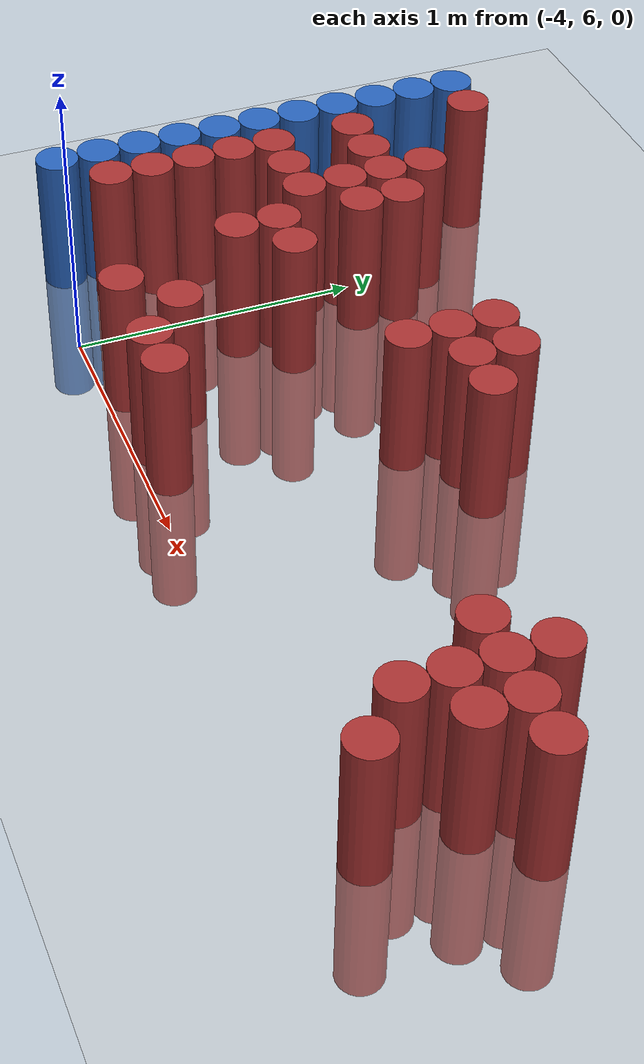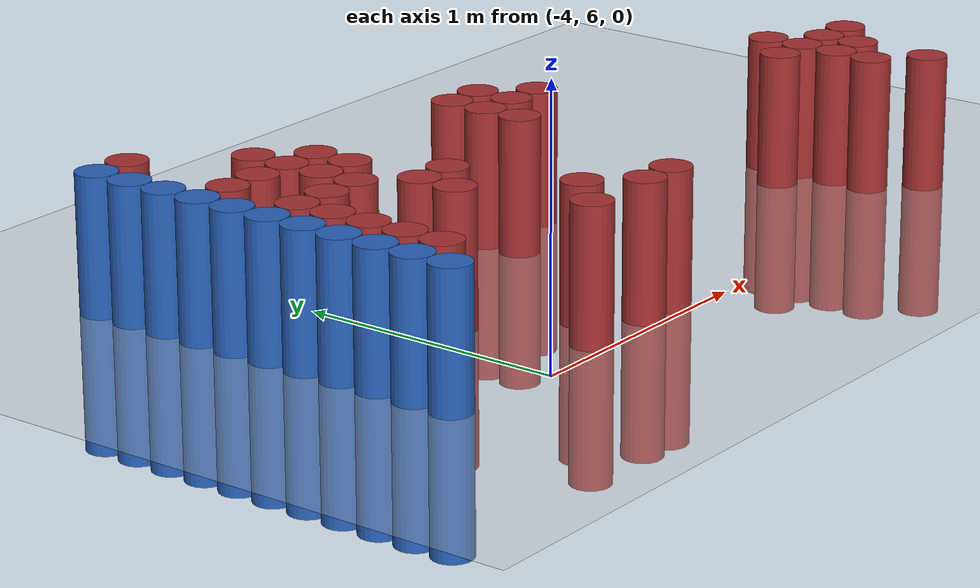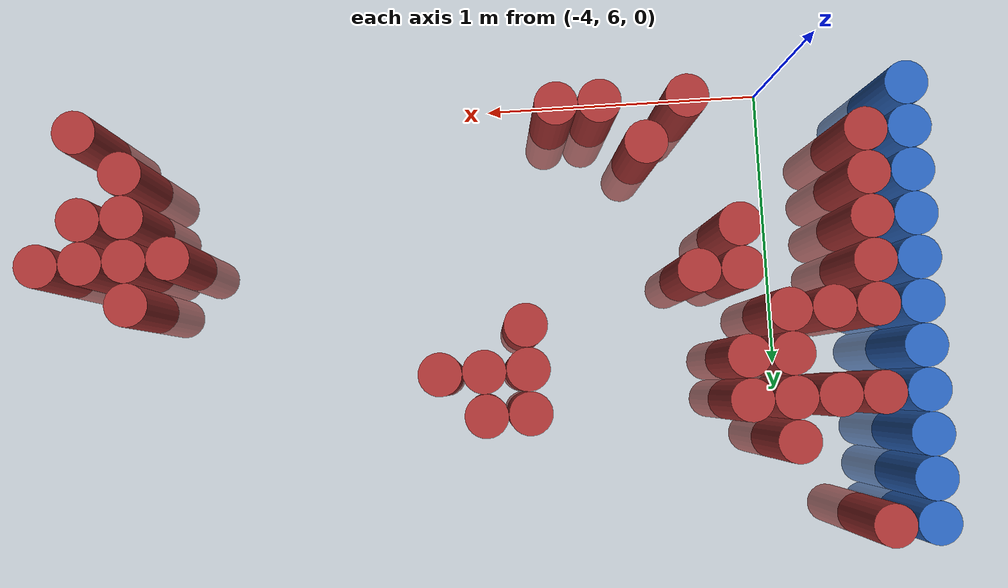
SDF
<sdf version="1.6">
 <world name="default">
  <model name="ground_plane">
   <static>1</static>
   <link name="link">
    <collision name="collision">
     <geometry><plane><normal>0 0 1</normal><size>100 100</size></plane></geometry>
     <surface><friction><ode><mu>100</mu><mu2>50</mu2></ode></friction></surface>
    </collision>
    <visual name="visual">
     <cast_shadows>0</cast_shadows>
     <geometry><plane><normal>0 0 1</normal><size>100 100</size></plane></geometry>
     <material>
      <script><uri>file://media/materials/scripts/gazebo.material</uri><name>Gazebo/Grey</name></script>
     </material>
    </visual>
   </link>
  </model>
  <model name="unit_cylinder_102">
   <static>1</static>
   <pose>-4.425000 6.075000 0.000000 0.000000 0.000000 0.000000</pose>
   <link name="link">
    <inertial>
     <mass>1</mass>
     <inertia><ixx>0.145833</ixx><ixy>0</ixy><ixz>0</ixz><iyy>0.145833</iyy><iyz>0</iyz><izz>0.125</izz></inertia>
    </inertial>
    <collision name="collision">
     <geometry><cylinder><radius>0.075000</radius><length>1</length></cylinder></geometry>
    </collision>
    <visual name="visual">
     <geometry><cylinder><radius>0.075000</radius><length>1</length></cylinder></geometry>
     <material>
      <ambient>0.152000 0.379000 0.720000 1</ambient>
      <diffuse>0.152000 0.379000 0.720000 1</diffuse>
     </material>
     <material>
      <script><name>Gazebo/Grey</name><uri>file://media/materials/scripts/gazebo.material</uri></script>
     </material>
    </visual>
   </link>
  </model>
  <model name="unit_cylinder_103">
   <static>1</static>
   <pose>-4.425000 6.225000 0.000000 0.000000 0.000000 0.000000</pose>
   <link name="link">
    <inertial>
     <mass>1</mass>
     <inertia><ixx>0.145833</ixx><ixy>0</ixy><ixz>0</ixz><iyy>0.145833</iyy><iyz>0</iyz><izz>0.125</izz></inertia>
    </inertial>
    <collision name="collision">
     <geometry><cylinder><radius>0.075000</radius><length>1</length></cylinder></geometry>
    </collision>
    <visual name="visual">
     <geometry><cylinder><radius>0.075000</radius><length>1</length></cylinder></geometry>
     <material>
      <ambient>0.152000 0.379000 0.720000 1</ambient>
      <diffuse>0.152000 0.379000 0.720000 1</diffuse>
     </material>
     <material>
      <script><name>Gazebo/Grey</name><uri>file://media/materials/scripts/gazebo.material</uri></script>
     </material>
    </visual>
   </link>
  </model>
  <model name="unit_cylinder_104">
   <static>1</static>
   <pose>-4.425000 6.375000 0.000000 0.000000 0.000000 0.000000</pose>
   <link name="link">
    <inertial>
     <mass>1</mass>
     <inertia><ixx>0.145833</ixx><ixy>0</ixy><ixz>0</ixz><iyy>0.145833</iyy><iyz>0</iyz><izz>0.125</izz></inertia>
    </inertial>
    <collision name="collision">
     <geometry><cylinder><radius>0.075000</radius><length>1</length></cylinder></geometry>
    </collision>
    <visual name="visual">
     <geometry><cylinder><radius>0.075000</radius><length>1</length></cylinder></geometry>
     <material>
      <ambient>0.152000 0.379000 0.720000 1</ambient>
      <diffuse>0.152000 0.379000 0.720000 1</diffuse>
     </material>
     <material>
      <script><name>Gazebo/Grey</name><uri>file://media/materials/scripts/gazebo.material</uri></script>
     </material>
    </visual>
   </link>
  </model>
  <model name="unit_cylinder_105">
   <static>1</static>
   <pose>-4.425000 6.525000 0.000000 0.000000 0.000000 0.000000</pose>
   <link name="link">
    <inertial>
     <mass>1</mass>
     <inertia><ixx>0.145833</ixx><ixy>0</ixy><ixz>0</ixz><iyy>0.145833</iyy><iyz>0</iyz><izz>0.125</izz></inertia>
    </inertial>
    <collision name="collision">
     <geometry><cylinder><radius>0.075000</radius><length>1</length></cylinder></geometry>
    </collision>
    <visual name="visual">
     <geometry><cylinder><radius>0.075000</radius><length>1</length></cylinder></geometry>
     <material>
      <ambient>0.152000 0.379000 0.720000 1</ambient>
      <diffuse>0.152000 0.379000 0.720000 1</diffuse>
     </material>
     <material>
      <script><name>Gazebo/Grey</name><uri>file://media/materials/scripts/gazebo.material</uri></script>
     </material>
    </visual>
   </link>
  </model>
  <model name="unit_cylinder_106">
   <static>1</static>
   <pose>-4.425000 6.675000 0.000000 0.000000 0.000000 0.000000</pose>
   <link name="link">
    <inertial>
     <mass>1</mass>
     <inertia><ixx>0.145833</ixx><ixy>0</ixy><ixz>0</ixz><iyy>0.145833</iyy><iyz>0</iyz><izz>0.125</izz></inertia>
    </inertial>
    <collision name="collision">
     <geometry><cylinder><radius>0.075000</radius><length>1</length></cylinder></geometry>
    </collision>
    <visual name="visual">
     <geometry><cylinder><radius>0.075000</radius><length>1</length></cylinder></geometry>
     <material>
      <ambient>0.152000 0.379000 0.720000 1</ambient>
      <diffuse>0.152000 0.379000 0.720000 1</diffuse>
     </material>
     <material>
      <script><name>Gazebo/Grey</name><uri>file://media/materials/scripts/gazebo.material</uri></script>
     </material>
    </visual>
   </link>
  </model>
  <model name="unit_cylinder_107">
   <static>1</static>
   <pose>-4.425000 6.825000 0.000000 0.000000 0.000000 0.000000</pose>
   <link name="link">
    <inertial>
     <mass>1</mass>
     <inertia><ixx>0.145833</ixx><ixy>0</ixy><ixz>0</ixz><iyy>0.145833</iyy><iyz>0</iyz><izz>0.125</izz></inertia>
    </inertial>
    <collision name="collision">
     <geometry><cylinder><radius>0.075000</radius><length>1</length></cylinder></geometry>
    </collision>
    <visual name="visual">
     <geometry><cylinder><radius>0.075000</radius><length>1</length></cylinder></geometry>
     <material>
      <ambient>0.152000 0.379000 0.720000 1</ambient>
      <diffuse>0.152000 0.379000 0.720000 1</diffuse>
     </material>
     <material>
      <script><name>Gazebo/Grey</name><uri>file://media/materials/scripts/gazebo.material</uri></script>
     </material>
    </visual>
   </link>
  </model>
  <model name="unit_cylinder_108">
   <static>1</static>
   <pose>-4.425000 6.975000 0.000000 0.000000 0.000000 0.000000</pose>
   <link name="link">
    <inertial>
     <mass>1</mass>
     <inertia><ixx>0.145833</ixx><ixy>0</ixy><ixz>0</ixz><iyy>0.145833</iyy><iyz>0</iyz><izz>0.125</izz></inertia>
    </inertial>
    <collision name="collision">
     <geometry><cylinder><radius>0.075000</radius><length>1</length></cylinder></geometry>
    </collision>
    <visual name="visual">
     <geometry><cylinder><radius>0.075000</radius><length>1</length></cylinder></geometry>
     <material>
      <ambient>0.152000 0.379000 0.720000 1</ambient>
      <diffuse>0.152000 0.379000 0.720000 1</diffuse>
     </material>
     <material>
      <script><name>Gazebo/Grey</name><uri>file://media/materials/scripts/gazebo.material</uri></script>
     </material>
    </visual>
   </link>
  </model>
  <model name="unit_cylinder_109">
   <static>1</static>
   <pose>-4.425000 7.125000 0.000000 0.000000 0.000000 0.000000</pose>
   <link name="link">
    <inertial>
     <mass>1</mass>
     <inertia><ixx>0.145833</ixx><ixy>0</ixy><ixz>0</ixz><iyy>0.145833</iyy><iyz>0</iyz><izz>0.125</izz></inertia>
    </inertial>
    <collision name="collision">
     <geometry><cylinder><radius>0.075000</radius><length>1</length></cylinder></geometry>
    </collision>
    <visual name="visual">
     <geometry><cylinder><radius>0.075000</radius><length>1</length></cylinder></geometry>
     <material>
      <ambient>0.152000 0.379000 0.720000 1</ambient>
      <diffuse>0.152000 0.379000 0.720000 1</diffuse>
     </material>
     <material>
      <script><name>Gazebo/Grey</name><uri>file://media/materials/scripts/gazebo.material</uri></script>
     </material>
    </visual>
   </link>
  </model>
  <model name="unit_cylinder_110">
   <static>1</static>
   <pose>-4.425000 7.275000 0.000000 0.000000 0.000000 0.000000</pose>
   <link name="link">
    <inertial>
     <mass>1</mass>
     <inertia><ixx>0.145833</ixx><ixy>0</ixy><ixz>0</ixz><iyy>0.145833</iyy><iyz>0</iyz><izz>0.125</izz></inertia>
    </inertial>
    <collision name="collision">
     <geometry><cylinder><radius>0.075000</radius><length>1</length></cylinder></geometry>
    </collision>
    <visual name="visual">
     <geometry><cylinder><radius>0.075000</radius><length>1</length></cylinder></geometry>
     <material>
      <ambient>0.152000 0.379000 0.720000 1</ambient>
      <diffuse>0.152000 0.379000 0.720000 1</diffuse>
     </material>
     <material>
      <script><name>Gazebo/Grey</name><uri>file://media/materials/scripts/gazebo.material</uri></script>
     </material>
    </visual>
   </link>
  </model>
  <model name="unit_cylinder_111">
   <static>1</static>
   <pose>-4.425000 7.425000 0.000000 0.000000 0.000000 0.000000</pose>
   <link name="link">
    <inertial>
     <mass>1</mass>
     <inertia><ixx>0.145833</ixx><ixy>0</ixy><ixz>0</ixz><iyy>0.145833</iyy><iyz>0</iyz><izz>0.125</izz></inertia>
    </inertial>
    <collision name="collision">
     <geometry><cylinder><radius>0.075000</radius><length>1</length></cylinder></geometry>
    </collision>
    <visual name="visual">
     <geometry><cylinder><radius>0.075000</radius><length>1</length></cylinder></geometry>
     <material>
      <ambient>0.152000 0.379000 0.720000 1</ambient>
      <diffuse>0.152000 0.379000 0.720000 1</diffuse>
     </material>
     <material>
      <script><name>Gazebo/Grey</name><uri>file://media/materials/scripts/gazebo.material</uri></script>
     </material>
    </visual>
   </link>
  </model>
  <model name="unit_cylinder_112">
   <static>1</static>
   <pose>-4.425000 7.575000 0.000000 0.000000 0.000000 0.000000</pose>
   <link name="link">
    <inertial>
     <mass>1</mass>
     <inertia><ixx>0.145833</ixx><ixy>0</ixy><ixz>0</ixz><iyy>0.145833</iyy><iyz>0</iyz><izz>0.125</izz></inertia>
    </inertial>
    <collision name="collision">
     <geometry><cylinder><radius>0.075000</radius><length>1</length></cylinder></geometry>
    </collision>
    <visual name="visual">
     <geometry><cylinder><radius>0.075000</radius><length>1</length></cylinder></geometry>
     <material>
      <ambient>0.152000 0.379000 0.720000 1</ambient>
      <diffuse>0.152000 0.379000 0.720000 1</diffuse>
     </material>
     <material>
      <script><name>Gazebo/Grey</name><uri>file://media/materials/scripts/gazebo.material</uri></script>
     </material>
    </visual>
   </link>
  </model>
  <model name="unit_cylinder_128">
   <static>1</static>
   <pose>-4.275000 6.225000 0.000000 0.000000 0.000000 0.000000</pose>
   <link name="link">
    <inertial>
     <mass>1</mass>
     <inertia><ixx>0.145833</ixx><ixy>0</ixy><ixz>0</ixz><iyy>0.145833</iyy><iyz>0</iyz><izz>0.125</izz></inertia>
    </inertial>
    <collision name="collision">
     <geometry><cylinder><radius>0.075000</radius><length>1</length></cylinder></geometry>
    </collision>
    <visual name="visual">
     <geometry><cylinder><radius>0.075000</radius><length>1</length></cylinder></geometry>
     <material>
      <ambient>0.648000 0.192000 0.192000 1</ambient>
      <diffuse>0.648000 0.192000 0.192000 1</diffuse>
     </material>
     <material>
      <script><name>Gazebo/Grey</name><uri>file://media/materials/scripts/gazebo.material</uri></script>
     </material>
    </visual>
   </link>
  </model>
  <model name="unit_cylinder_129">
   <static>1</static>
   <pose>-4.275000 6.375000 0.000000 0.000000 0.000000 0.000000</pose>
   <link name="link">
    <inertial>
     <mass>1</mass>
     <inertia><ixx>0.145833</ixx><ixy>0</ixy><ixz>0</ixz><iyy>0.145833</iyy><iyz>0</iyz><izz>0.125</izz></inertia>
    </inertial>
    <collision name="collision">
     <geometry><cylinder><radius>0.075000</radius><length>1</length></cylinder></geometry>
    </collision>
    <visual name="visual">
     <geometry><cylinder><radius>0.075000</radius><length>1</length></cylinder></geometry>
     <material>
      <ambient>0.648000 0.192000 0.192000 1</ambient>
      <diffuse>0.648000 0.192000 0.192000 1</diffuse>
     </material>
     <material>
      <script><name>Gazebo/Grey</name><uri>file://media/materials/scripts/gazebo.material</uri></script>
     </material>
    </visual>
   </link>
  </model>
  <model name="unit_cylinder_130">
   <static>1</static>
   <pose>-4.275000 6.525000 0.000000 0.000000 0.000000 0.000000</pose>
   <link name="link">
    <inertial>
     <mass>1</mass>
     <inertia><ixx>0.145833</ixx><ixy>0</ixy><ixz>0</ixz><iyy>0.145833</iyy><iyz>0</iyz><izz>0.125</izz></inertia>
    </inertial>
    <collision name="collision">
     <geometry><cylinder><radius>0.075000</radius><length>1</length></cylinder></geometry>
    </collision>
    <visual name="visual">
     <geometry><cylinder><radius>0.075000</radius><length>1</length></cylinder></geometry>
     <material>
      <ambient>0.648000 0.192000 0.192000 1</ambient>
      <diffuse>0.648000 0.192000 0.192000 1</diffuse>
     </material>
     <material>
      <script><name>Gazebo/Grey</name><uri>file://media/materials/scripts/gazebo.material</uri></script>
     </material>
    </visual>
   </link>
  </model>
  <model name="unit_cylinder_131">
   <static>1</static>
   <pose>-4.275000 6.675000 0.000000 0.000000 0.000000 0.000000</pose>
   <link name="link">
    <inertial>
     <mass>1</mass>
     <inertia><ixx>0.145833</ixx><ixy>0</ixy><ixz>0</ixz><iyy>0.145833</iyy><iyz>0</iyz><izz>0.125</izz></inertia>
    </inertial>
    <collision name="collision">
     <geometry><cylinder><radius>0.075000</radius><length>1</length></cylinder></geometry>
    </collision>
    <visual name="visual">
     <geometry><cylinder><radius>0.075000</radius><length>1</length></cylinder></geometry>
     <material>
      <ambient>0.648000 0.192000 0.192000 1</ambient>
      <diffuse>0.648000 0.192000 0.192000 1</diffuse>
     </material>
     <material>
      <script><name>Gazebo/Grey</name><uri>file://media/materials/scripts/gazebo.material</uri></script>
     </material>
    </visual>
   </link>
  </model>
  <model name="unit_cylinder_132">
   <static>1</static>
   <pose>-4.275000 6.825000 0.000000 0.000000 0.000000 0.000000</pose>
   <link name="link">
    <inertial>
     <mass>1</mass>
     <inertia><ixx>0.145833</ixx><ixy>0</ixy><ixz>0</ixz><iyy>0.145833</iyy><iyz>0</iyz><izz>0.125</izz></inertia>
    </inertial>
    <collision name="collision">
     <geometry><cylinder><radius>0.075000</radius><length>1</length></cylinder></geometry>
    </collision>
    <visual name="visual">
     <geometry><cylinder><radius>0.075000</radius><length>1</length></cylinder></geometry>
     <material>
      <ambient>0.648000 0.192000 0.192000 1</ambient>
      <diffuse>0.648000 0.192000 0.192000 1</diffuse>
     </material>
     <material>
      <script><name>Gazebo/Grey</name><uri>file://media/materials/scripts/gazebo.material</uri></script>
     </material>
    </visual>
   </link>
  </model>
  <model name="unit_cylinder_133">
   <static>1</static>
   <pose>-4.275000 7.125000 0.000000 0.000000 0.000000 0.000000</pose>
   <link name="link">
    <inertial>
     <mass>1</mass>
     <inertia><ixx>0.145833</ixx><ixy>0</ixy><ixz>0</ixz><iyy>0.145833</iyy><iyz>0</iyz><izz>0.125</izz></inertia>
    </inertial>
    <collision name="collision">
     <geometry><cylinder><radius>0.075000</radius><length>1</length></cylinder></geometry>
    </collision>
    <visual name="visual">
     <geometry><cylinder><radius>0.075000</radius><length>1</length></cylinder></geometry>
     <material>
      <ambient>0.648000 0.192000 0.192000 1</ambient>
      <diffuse>0.648000 0.192000 0.192000 1</diffuse>
     </material>
     <material>
      <script><name>Gazebo/Grey</name><uri>file://media/materials/scripts/gazebo.material</uri></script>
     </material>
    </visual>
   </link>
  </model>
  <model name="unit_cylinder_134">
   <static>1</static>
   <pose>-4.275000 7.575000 0.000000 0.000000 0.000000 0.000000</pose>
   <link name="link">
    <inertial>
     <mass>1</mass>
     <inertia><ixx>0.145833</ixx><ixy>0</ixy><ixz>0</ixz><iyy>0.145833</iyy><iyz>0</iyz><izz>0.125</izz></inertia>
    </inertial>
    <collision name="collision">
     <geometry><cylinder><radius>0.075000</radius><length>1</length></cylinder></geometry>
    </collision>
    <visual name="visual">
     <geometry><cylinder><radius>0.075000</radius><length>1</length></cylinder></geometry>
     <material>
      <ambient>0.648000 0.192000 0.192000 1</ambient>
      <diffuse>0.648000 0.192000 0.192000 1</diffuse>
     </material>
     <material>
      <script><name>Gazebo/Grey</name><uri>file://media/materials/scripts/gazebo.material</uri></script>
     </material>
    </visual>
   </link>
  </model>
  <model name="unit_cylinder_144">
   <static>1</static>
   <pose>-4.125000 6.825000 0.000000 0.000000 0.000000 0.000000</pose>
   <link name="link">
    <inertial>
     <mass>1</mass>
     <inertia><ixx>0.145833</ixx><ixy>0</ixy><ixz>0</ixz><iyy>0.145833</iyy><iyz>0</iyz><izz>0.125</izz></inertia>
    </inertial>
    <collision name="collision">
     <geometry><cylinder><radius>0.075000</radius><length>1</length></cylinder></geometry>
    </collision>
    <visual name="visual">
     <geometry><cylinder><radius>0.075000</radius><length>1</length></cylinder></geometry>
     <material>
      <ambient>0.648000 0.192000 0.192000 1</ambient>
      <diffuse>0.648000 0.192000 0.192000 1</diffuse>
     </material>
     <material>
      <script><name>Gazebo/Grey</name><uri>file://media/materials/scripts/gazebo.material</uri></script>
     </material>
    </visual>
   </link>
  </model>
  <model name="unit_cylinder_145">
   <static>1</static>
   <pose>-4.125000 7.125000 0.000000 0.000000 0.000000 0.000000</pose>
   <link name="link">
    <inertial>
     <mass>1</mass>
     <inertia><ixx>0.145833</ixx><ixy>0</ixy><ixz>0</ixz><iyy>0.145833</iyy><iyz>0</iyz><izz>0.125</izz></inertia>
    </inertial>
    <collision name="collision">
     <geometry><cylinder><radius>0.075000</radius><length>1</length></cylinder></geometry>
    </collision>
    <visual name="visual">
     <geometry><cylinder><radius>0.075000</radius><length>1</length></cylinder></geometry>
     <material>
      <ambient>0.648000 0.192000 0.192000 1</ambient>
      <diffuse>0.648000 0.192000 0.192000 1</diffuse>
     </material>
     <material>
      <script><name>Gazebo/Grey</name><uri>file://media/materials/scripts/gazebo.material</uri></script>
     </material>
    </visual>
   </link>
  </model>
  <model name="unit_cylinder_148">
   <static>1</static>
   <pose>-3.975000 6.825000 0.000000 0.000000 0.000000 0.000000</pose>
   <link name="link">
    <inertial>
     <mass>1</mass>
     <inertia><ixx>0.145833</ixx><ixy>0</ixy><ixz>0</ixz><iyy>0.145833</iyy><iyz>0</iyz><izz>0.125</izz></inertia>
    </inertial>
    <collision name="collision">
     <geometry><cylinder><radius>0.075000</radius><length>1</length></cylinder></geometry>
    </collision>
    <visual name="visual">
     <geometry><cylinder><radius>0.075000</radius><length>1</length></cylinder></geometry>
     <material>
      <ambient>0.648000 0.192000 0.192000 1</ambient>
      <diffuse>0.648000 0.192000 0.192000 1</diffuse>
     </material>
     <material>
      <script><name>Gazebo/Grey</name><uri>file://media/materials/scripts/gazebo.material</uri></script>
     </material>
    </visual>
   </link>
  </model>
  <model name="unit_cylinder_149">
   <static>1</static>
   <pose>-3.975000 6.975000 0.000000 0.000000 0.000000 0.000000</pose>
   <link name="link">
    <inertial>
     <mass>1</mass>
     <inertia><ixx>0.145833</ixx><ixy>0</ixy><ixz>0</ixz><iyy>0.145833</iyy><iyz>0</iyz><izz>0.125</izz></inertia>
    </inertial>
    <collision name="collision">
     <geometry><cylinder><radius>0.075000</radius><length>1</length></cylinder></geometry>
    </collision>
    <visual name="visual">
     <geometry><cylinder><radius>0.075000</radius><length>1</length></cylinder></geometry>
     <material>
      <ambient>0.648000 0.192000 0.192000 1</ambient>
      <diffuse>0.648000 0.192000 0.192000 1</diffuse>
     </material>
     <material>
      <script><name>Gazebo/Grey</name><uri>file://media/materials/scripts/gazebo.material</uri></script>
     </material>
    </visual>
   </link>
  </model>
  <model name="unit_cylinder_150">
   <static>1</static>
   <pose>-3.975000 7.125000 0.000000 0.000000 0.000000 0.000000</pose>
   <link name="link">
    <inertial>
     <mass>1</mass>
     <inertia><ixx>0.145833</ixx><ixy>0</ixy><ixz>0</ixz><iyy>0.145833</iyy><iyz>0</iyz><izz>0.125</izz></inertia>
    </inertial>
    <collision name="collision">
     <geometry><cylinder><radius>0.075000</radius><length>1</length></cylinder></geometry>
    </collision>
    <visual name="visual">
     <geometry><cylinder><radius>0.075000</radius><length>1</length></cylinder></geometry>
     <material>
      <ambient>0.648000 0.192000 0.192000 1</ambient>
      <diffuse>0.648000 0.192000 0.192000 1</diffuse>
     </material>
     <material>
      <script><name>Gazebo/Grey</name><uri>file://media/materials/scripts/gazebo.material</uri></script>
     </material>
    </visual>
   </link>
  </model>
  <model name="unit_cylinder_151">
   <static>1</static>
   <pose>-3.975000 7.275000 0.000000 0.000000 0.000000 0.000000</pose>
   <link name="link">
    <inertial>
     <mass>1</mass>
     <inertia><ixx>0.145833</ixx><ixy>0</ixy><ixz>0</ixz><iyy>0.145833</iyy><iyz>0</iyz><izz>0.125</izz></inertia>
    </inertial>
    <collision name="collision">
     <geometry><cylinder><radius>0.075000</radius><length>1</length></cylinder></geometry>
    </collision>
    <visual name="visual">
     <geometry><cylinder><radius>0.075000</radius><length>1</length></cylinder></geometry>
     <material>
      <ambient>0.648000 0.192000 0.192000 1</ambient>
      <diffuse>0.648000 0.192000 0.192000 1</diffuse>
     </material>
     <material>
      <script><name>Gazebo/Grey</name><uri>file://media/materials/scripts/gazebo.material</uri></script>
     </material>
    </visual>
   </link>
  </model>
  <model name="unit_cylinder_153">
   <static>1</static>
   <pose>-3.825000 6.525000 0.000000 0.000000 0.000000 0.000000</pose>
   <link name="link">
    <inertial>
     <mass>1</mass>
     <inertia><ixx>0.145833</ixx><ixy>0</ixy><ixz>0</ixz><iyy>0.145833</iyy><iyz>0</iyz><izz>0.125</izz></inertia>
    </inertial>
    <collision name="collision">
     <geometry><cylinder><radius>0.075000</radius><length>1</length></cylinder></geometry>
    </collision>
    <visual name="visual">
     <geometry><cylinder><radius>0.075000</radius><length>1</length></cylinder></geometry>
     <material>
      <ambient>0.648000 0.192000 0.192000 1</ambient>
      <diffuse>0.648000 0.192000 0.192000 1</diffuse>
     </material>
     <material>
      <script><name>Gazebo/Grey</name><uri>file://media/materials/scripts/gazebo.material</uri></script>
     </material>
    </visual>
   </link>
  </model>
  <model name="unit_cylinder_154">
   <static>1</static>
   <pose>-3.825000 6.675000 0.000000 0.000000 0.000000 0.000000</pose>
   <link name="link">
    <inertial>
     <mass>1</mass>
     <inertia><ixx>0.145833</ixx><ixy>0</ixy><ixz>0</ixz><iyy>0.145833</iyy><iyz>0</iyz><izz>0.125</izz></inertia>
    </inertial>
    <collision name="collision">
     <geometry><cylinder><radius>0.075000</radius><length>1</length></cylinder></geometry>
    </collision>
    <visual name="visual">
     <geometry><cylinder><radius>0.075000</radius><length>1</length></cylinder></geometry>
     <material>
      <ambient>0.648000 0.192000 0.192000 1</ambient>
      <diffuse>0.648000 0.192000 0.192000 1</diffuse>
     </material>
     <material>
      <script><name>Gazebo/Grey</name><uri>file://media/materials/scripts/gazebo.material</uri></script>
     </material>
    </visual>
   </link>
  </model>
  <model name="unit_cylinder_155">
   <static>1</static>
   <pose>-3.825000 6.975000 0.000000 0.000000 0.000000 0.000000</pose>
   <link name="link">
    <inertial>
     <mass>1</mass>
     <inertia><ixx>0.145833</ixx><ixy>0</ixy><ixz>0</ixz><iyy>0.145833</iyy><iyz>0</iyz><izz>0.125</izz></inertia>
    </inertial>
    <collision name="collision">
     <geometry><cylinder><radius>0.075000</radius><length>1</length></cylinder></geometry>
    </collision>
    <visual name="visual">
     <geometry><cylinder><radius>0.075000</radius><length>1</length></cylinder></geometry>
     <material>
      <ambient>0.648000 0.192000 0.192000 1</ambient>
      <diffuse>0.648000 0.192000 0.192000 1</diffuse>
     </material>
     <material>
      <script><name>Gazebo/Grey</name><uri>file://media/materials/scripts/gazebo.material</uri></script>
     </material>
    </visual>
   </link>
  </model>
  <model name="unit_cylinder_156">
   <static>1</static>
   <pose>-3.825000 7.125000 0.000000 0.000000 0.000000 0.000000</pose>
   <link name="link">
    <inertial>
     <mass>1</mass>
     <inertia><ixx>0.145833</ixx><ixy>0</ixy><ixz>0</ixz><iyy>0.145833</iyy><iyz>0</iyz><izz>0.125</izz></inertia>
    </inertial>
    <collision name="collision">
     <geometry><cylinder><radius>0.075000</radius><length>1</length></cylinder></geometry>
    </collision>
    <visual name="visual">
     <geometry><cylinder><radius>0.075000</radius><length>1</length></cylinder></geometry>
     <material>
      <ambient>0.648000 0.192000 0.192000 1</ambient>
      <diffuse>0.648000 0.192000 0.192000 1</diffuse>
     </material>
     <material>
      <script><name>Gazebo/Grey</name><uri>file://media/materials/scripts/gazebo.material</uri></script>
     </material>
    </visual>
   </link>
  </model>
  <model name="unit_cylinder_159">
   <static>1</static>
   <pose>-3.675000 6.075000 0.000000 0.000000 0.000000 0.000000</pose>
   <link name="link">
    <inertial>
     <mass>1</mass>
     <inertia><ixx>0.145833</ixx><ixy>0</ixy><ixz>0</ixz><iyy>0.145833</iyy><iyz>0</iyz><izz>0.125</izz></inertia>
    </inertial>
    <collision name="collision">
     <geometry><cylinder><radius>0.075000</radius><length>1</length></cylinder></geometry>
    </collision>
    <visual name="visual">
     <geometry><cylinder><radius>0.075000</radius><length>1</length></cylinder></geometry>
     <material>
      <ambient>0.648000 0.192000 0.192000 1</ambient>
      <diffuse>0.648000 0.192000 0.192000 1</diffuse>
     </material>
     <material>
      <script><name>Gazebo/Grey</name><uri>file://media/materials/scripts/gazebo.material</uri></script>
     </material>
    </visual>
   </link>
  </model>
  <model name="unit_cylinder_160">
   <static>1</static>
   <pose>-3.675000 6.675000 0.000000 0.000000 0.000000 0.000000</pose>
   <link name="link">
    <inertial>
     <mass>1</mass>
     <inertia><ixx>0.145833</ixx><ixy>0</ixy><ixz>0</ixz><iyy>0.145833</iyy><iyz>0</iyz><izz>0.125</izz></inertia>
    </inertial>
    <collision name="collision">
     <geometry><cylinder><radius>0.075000</radius><length>1</length></cylinder></geometry>
    </collision>
    <visual name="visual">
     <geometry><cylinder><radius>0.075000</radius><length>1</length></cylinder></geometry>
     <material>
      <ambient>0.648000 0.192000 0.192000 1</ambient>
      <diffuse>0.648000 0.192000 0.192000 1</diffuse>
     </material>
     <material>
      <script><name>Gazebo/Grey</name><uri>file://media/materials/scripts/gazebo.material</uri></script>
     </material>
    </visual>
   </link>
  </model>
  <model name="unit_cylinder_162">
   <static>1</static>
   <pose>-3.525000 6.225000 0.000000 0.000000 0.000000 0.000000</pose>
   <link name="link">
    <inertial>
     <mass>1</mass>
     <inertia><ixx>0.145833</ixx><ixy>0</ixy><ixz>0</ixz><iyy>0.145833</iyy><iyz>0</iyz><izz>0.125</izz></inertia>
    </inertial>
    <collision name="collision">
     <geometry><cylinder><radius>0.075000</radius><length>1</length></cylinder></geometry>
    </collision>
    <visual name="visual">
     <geometry><cylinder><radius>0.075000</radius><length>1</length></cylinder></geometry>
     <material>
      <ambient>0.648000 0.192000 0.192000 1</ambient>
      <diffuse>0.648000 0.192000 0.192000 1</diffuse>
     </material>
     <material>
      <script><name>Gazebo/Grey</name><uri>file://media/materials/scripts/gazebo.material</uri></script>
     </material>
    </visual>
   </link>
  </model>
  <model name="unit_cylinder_165">
   <static>1</static>
   <pose>-3.375000 6.075000 0.000000 0.000000 0.000000 0.000000</pose>
   <link name="link">
    <inertial>
     <mass>1</mass>
     <inertia><ixx>0.145833</ixx><ixy>0</ixy><ixz>0</ixz><iyy>0.145833</iyy><iyz>0</iyz><izz>0.125</izz></inertia>
    </inertial>
    <collision name="collision">
     <geometry><cylinder><radius>0.075000</radius><length>1</length></cylinder></geometry>
    </collision>
    <visual name="visual">
     <geometry><cylinder><radius>0.075000</radius><length>1</length></cylinder></geometry>
     <material>
      <ambient>0.648000 0.192000 0.192000 1</ambient>
      <diffuse>0.648000 0.192000 0.192000 1</diffuse>
     </material>
     <material>
      <script><name>Gazebo/Grey</name><uri>file://media/materials/scripts/gazebo.material</uri></script>
     </material>
    </visual>
   </link>
  </model>
  <model name="unit_cylinder_169">
   <static>1</static>
   <pose>-3.225000 6.075000 0.000000 0.000000 0.000000 0.000000</pose>
   <link name="link">
    <inertial>
     <mass>1</mass>
     <inertia><ixx>0.145833</ixx><ixy>0</ixy><ixz>0</ixz><iyy>0.145833</iyy><iyz>0</iyz><izz>0.125</izz></inertia>
    </inertial>
    <collision name="collision">
     <geometry><cylinder><radius>0.075000</radius><length>1</length></cylinder></geometry>
    </collision>
    <visual name="visual">
     <geometry><cylinder><radius>0.075000</radius><length>1</length></cylinder></geometry>
     <material>
      <ambient>0.648000 0.192000 0.192000 1</ambient>
      <diffuse>0.648000 0.192000 0.192000 1</diffuse>
     </material>
     <material>
      <script><name>Gazebo/Grey</name><uri>file://media/materials/scripts/gazebo.material</uri></script>
     </material>
    </visual>
   </link>
  </model>
  <model name="unit_cylinder_170">
   <static>1</static>
   <pose>-3.075000 6.825000 0.000000 0.000000 0.000000 0.000000</pose>
   <link name="link">
    <inertial>
     <mass>1</mass>
     <inertia><ixx>0.145833</ixx><ixy>0</ixy><ixz>0</ixz><iyy>0.145833</iyy><iyz>0</iyz><izz>0.125</izz></inertia>
    </inertial>
    <collision name="collision">
     <geometry><cylinder><radius>0.075000</radius><length>1</length></cylinder></geometry>
    </collision>
    <visual name="visual">
     <geometry><cylinder><radius>0.075000</radius><length>1</length></cylinder></geometry>
     <material>
      <ambient>0.648000 0.192000 0.192000 1</ambient>
      <diffuse>0.648000 0.192000 0.192000 1</diffuse>
     </material>
     <material>
      <script><name>Gazebo/Grey</name><uri>file://media/materials/scripts/gazebo.material</uri></script>
     </material>
    </visual>
   </link>
  </model>
  <model name="unit_cylinder_171">
   <static>1</static>
   <pose>-3.075000 6.975000 0.000000 0.000000 0.000000 0.000000</pose>
   <link name="link">
    <inertial>
     <mass>1</mass>
     <inertia><ixx>0.145833</ixx><ixy>0</ixy><ixz>0</ixz><iyy>0.145833</iyy><iyz>0</iyz><izz>0.125</izz></inertia>
    </inertial>
    <collision name="collision">
     <geometry><cylinder><radius>0.075000</radius><length>1</length></cylinder></geometry>
    </collision>
    <visual name="visual">
     <geometry><cylinder><radius>0.075000</radius><length>1</length></cylinder></geometry>
     <material>
      <ambient>0.648000 0.192000 0.192000 1</ambient>
      <diffuse>0.648000 0.192000 0.192000 1</diffuse>
     </material>
     <material>
      <script><name>Gazebo/Grey</name><uri>file://media/materials/scripts/gazebo.material</uri></script>
     </material>
    </visual>
   </link>
  </model>
  <model name="unit_cylinder_172">
   <static>1</static>
   <pose>-3.075000 7.125000 0.000000 0.000000 0.000000 0.000000</pose>
   <link name="link">
    <inertial>
     <mass>1</mass>
     <inertia><ixx>0.145833</ixx><ixy>0</ixy><ixz>0</ixz><iyy>0.145833</iyy><iyz>0</iyz><izz>0.125</izz></inertia>
    </inertial>
    <collision name="collision">
     <geometry><cylinder><radius>0.075000</radius><length>1</length></cylinder></geometry>
    </collision>
    <visual name="visual">
     <geometry><cylinder><radius>0.075000</radius><length>1</length></cylinder></geometry>
     <material>
      <ambient>0.648000 0.192000 0.192000 1</ambient>
      <diffuse>0.648000 0.192000 0.192000 1</diffuse>
     </material>
     <material>
      <script><name>Gazebo/Grey</name><uri>file://media/materials/scripts/gazebo.material</uri></script>
     </material>
    </visual>
   </link>
  </model>
  <model name="unit_cylinder_173">
   <static>1</static>
   <pose>-2.925000 6.975000 0.000000 0.000000 0.000000 0.000000</pose>
   <link name="link">
    <inertial>
     <mass>1</mass>
     <inertia><ixx>0.145833</ixx><ixy>0</ixy><ixz>0</ixz><iyy>0.145833</iyy><iyz>0</iyz><izz>0.125</izz></inertia>
    </inertial>
    <collision name="collision">
     <geometry><cylinder><radius>0.075000</radius><length>1</length></cylinder></geometry>
    </collision>
    <visual name="visual">
     <geometry><cylinder><radius>0.075000</radius><length>1</length></cylinder></geometry>
     <material>
      <ambient>0.648000 0.192000 0.192000 1</ambient>
      <diffuse>0.648000 0.192000 0.192000 1</diffuse>
     </material>
     <material>
      <script><name>Gazebo/Grey</name><uri>file://media/materials/scripts/gazebo.material</uri></script>
     </material>
    </visual>
   </link>
  </model>
  <model name="unit_cylinder_174">
   <static>1</static>
   <pose>-2.925000 7.125000 0.000000 0.000000 0.000000 0.000000</pose>
   <link name="link">
    <inertial>
     <mass>1</mass>
     <inertia><ixx>0.145833</ixx><ixy>0</ixy><ixz>0</ixz><iyy>0.145833</iyy><iyz>0</iyz><izz>0.125</izz></inertia>
    </inertial>
    <collision name="collision">
     <geometry><cylinder><radius>0.075000</radius><length>1</length></cylinder></geometry>
    </collision>
    <visual name="visual">
     <geometry><cylinder><radius>0.075000</radius><length>1</length></cylinder></geometry>
     <material>
      <ambient>0.648000 0.192000 0.192000 1</ambient>
      <diffuse>0.648000 0.192000 0.192000 1</diffuse>
     </material>
     <material>
      <script><name>Gazebo/Grey</name><uri>file://media/materials/scripts/gazebo.material</uri></script>
     </material>
    </visual>
   </link>
  </model>
  <model name="unit_cylinder_175">
   <static>1</static>
   <pose>-2.775000 6.975000 0.000000 0.000000 0.000000 0.000000</pose>
   <link name="link">
    <inertial>
     <mass>1</mass>
     <inertia><ixx>0.145833</ixx><ixy>0</ixy><ixz>0</ixz><iyy>0.145833</iyy><iyz>0</iyz><izz>0.125</izz></inertia>
    </inertial>
    <collision name="collision">
     <geometry><cylinder><radius>0.075000</radius><length>1</length></cylinder></geometry>
    </collision>
    <visual name="visual">
     <geometry><cylinder><radius>0.075000</radius><length>1</length></cylinder></geometry>
     <material>
      <ambient>0.648000 0.192000 0.192000 1</ambient>
      <diffuse>0.648000 0.192000 0.192000 1</diffuse>
     </material>
     <material>
      <script><name>Gazebo/Grey</name><uri>file://media/materials/scripts/gazebo.material</uri></script>
     </material>
    </visual>
   </link>
  </model>
  <model name="unit_cylinder_194">
   <static>1</static>
   <pose>-1.875000 6.525000 0.000000 0.000000 0.000000 0.000000</pose>
   <link name="link">
    <inertial>
     <mass>1</mass>
     <inertia><ixx>0.145833</ixx><ixy>0</ixy><ixz>0</ixz><iyy>0.145833</iyy><iyz>0</iyz><izz>0.125</izz></inertia>
    </inertial>
    <collision name="collision">
     <geometry><cylinder><radius>0.075000</radius><length>1</length></cylinder></geometry>
    </collision>
    <visual name="visual">
     <geometry><cylinder><radius>0.075000</radius><length>1</length></cylinder></geometry>
     <material>
      <ambient>0.648000 0.192000 0.192000 1</ambient>
      <diffuse>0.648000 0.192000 0.192000 1</diffuse>
     </material>
     <material>
      <script><name>Gazebo/Grey</name><uri>file://media/materials/scripts/gazebo.material</uri></script>
     </material>
    </visual>
   </link>
  </model>
  <model name="unit_cylinder_198">
   <static>1</static>
   <pose>-1.725000 6.225000 0.000000 0.000000 0.000000 0.000000</pose>
   <link name="link">
    <inertial>
     <mass>1</mass>
     <inertia><ixx>0.145833</ixx><ixy>0</ixy><ixz>0</ixz><iyy>0.145833</iyy><iyz>0</iyz><izz>0.125</izz></inertia>
    </inertial>
    <collision name="collision">
     <geometry><cylinder><radius>0.075000</radius><length>1</length></cylinder></geometry>
    </collision>
    <visual name="visual">
     <geometry><cylinder><radius>0.075000</radius><length>1</length></cylinder></geometry>
     <material>
      <ambient>0.648000 0.192000 0.192000 1</ambient>
      <diffuse>0.648000 0.192000 0.192000 1</diffuse>
     </material>
     <material>
      <script><name>Gazebo/Grey</name><uri>file://media/materials/scripts/gazebo.material</uri></script>
     </material>
    </visual>
   </link>
  </model>
  <model name="unit_cylinder_199">
   <static>1</static>
   <pose>-1.725000 6.375000 0.000000 0.000000 0.000000 0.000000</pose>
   <link name="link">
    <inertial>
     <mass>1</mass>
     <inertia><ixx>0.145833</ixx><ixy>0</ixy><ixz>0</ixz><iyy>0.145833</iyy><iyz>0</iyz><izz>0.125</izz></inertia>
    </inertial>
    <collision name="collision">
     <geometry><cylinder><radius>0.075000</radius><length>1</length></cylinder></geometry>
    </collision>
    <visual name="visual">
     <geometry><cylinder><radius>0.075000</radius><length>1</length></cylinder></geometry>
     <material>
      <ambient>0.648000 0.192000 0.192000 1</ambient>
      <diffuse>0.648000 0.192000 0.192000 1</diffuse>
     </material>
     <material>
      <script><name>Gazebo/Grey</name><uri>file://media/materials/scripts/gazebo.material</uri></script>
     </material>
    </visual>
   </link>
  </model>
  <model name="unit_cylinder_200">
   <static>1</static>
   <pose>-1.725000 6.525000 0.000000 0.000000 0.000000 0.000000</pose>
   <link name="link">
    <inertial>
     <mass>1</mass>
     <inertia><ixx>0.145833</ixx><ixy>0</ixy><ixz>0</ixz><iyy>0.145833</iyy><iyz>0</iyz><izz>0.125</izz></inertia>
    </inertial>
    <collision name="collision">
     <geometry><cylinder><radius>0.075000</radius><length>1</length></cylinder></geometry>
    </collision>
    <visual name="visual">
     <geometry><cylinder><radius>0.075000</radius><length>1</length></cylinder></geometry>
     <material>
      <ambient>0.648000 0.192000 0.192000 1</ambient>
      <diffuse>0.648000 0.192000 0.192000 1</diffuse>
     </material>
     <material>
      <script><name>Gazebo/Grey</name><uri>file://media/materials/scripts/gazebo.material</uri></script>
     </material>
    </visual>
   </link>
  </model>
  <model name="unit_cylinder_201">
   <static>1</static>
   <pose>-1.725000 6.675000 0.000000 0.000000 0.000000 0.000000</pose>
   <link name="link">
    <inertial>
     <mass>1</mass>
     <inertia><ixx>0.145833</ixx><ixy>0</ixy><ixz>0</ixz><iyy>0.145833</iyy><iyz>0</iyz><izz>0.125</izz></inertia>
    </inertial>
    <collision name="collision">
     <geometry><cylinder><radius>0.075000</radius><length>1</length></cylinder></geometry>
    </collision>
    <visual name="visual">
     <geometry><cylinder><radius>0.075000</radius><length>1</length></cylinder></geometry>
     <material>
      <ambient>0.648000 0.192000 0.192000 1</ambient>
      <diffuse>0.648000 0.192000 0.192000 1</diffuse>
     </material>
     <material>
      <script><name>Gazebo/Grey</name><uri>file://media/materials/scripts/gazebo.material</uri></script>
     </material>
    </visual>
   </link>
  </model>
  <model name="unit_cylinder_206">
   <static>1</static>
   <pose>-1.575000 6.075000 0.000000 0.000000 0.000000 0.000000</pose>
   <link name="link">
    <inertial>
     <mass>1</mass>
     <inertia><ixx>0.145833</ixx><ixy>0</ixy><ixz>0</ixz><iyy>0.145833</iyy><iyz>0</iyz><izz>0.125</izz></inertia>
    </inertial>
    <collision name="collision">
     <geometry><cylinder><radius>0.075000</radius><length>1</length></cylinder></geometry>
    </collision>
    <visual name="visual">
     <geometry><cylinder><radius>0.075000</radius><length>1</length></cylinder></geometry>
     <material>
      <ambient>0.648000 0.192000 0.192000 1</ambient>
      <diffuse>0.648000 0.192000 0.192000 1</diffuse>
     </material>
     <material>
      <script><name>Gazebo/Grey</name><uri>file://media/materials/scripts/gazebo.material</uri></script>
     </material>
    </visual>
   </link>
  </model>
  <model name="unit_cylinder_207">
   <static>1</static>
   <pose>-1.575000 6.375000 0.000000 0.000000 0.000000 0.000000</pose>
   <link name="link">
    <inertial>
     <mass>1</mass>
     <inertia><ixx>0.145833</ixx><ixy>0</ixy><ixz>0</ixz><iyy>0.145833</iyy><iyz>0</iyz><izz>0.125</izz></inertia>
    </inertial>
    <collision name="collision">
     <geometry><cylinder><radius>0.075000</radius><length>1</length></cylinder></geometry>
    </collision>
    <visual name="visual">
     <geometry><cylinder><radius>0.075000</radius><length>1</length></cylinder></geometry>
     <material>
      <ambient>0.648000 0.192000 0.192000 1</ambient>
      <diffuse>0.648000 0.192000 0.192000 1</diffuse>
     </material>
     <material>
      <script><name>Gazebo/Grey</name><uri>file://media/materials/scripts/gazebo.material</uri></script>
     </material>
    </visual>
   </link>
  </model>
  <model name="unit_cylinder_208">
   <static>1</static>
   <pose>-1.575000 6.525000 0.000000 0.000000 0.000000 0.000000</pose>
   <link name="link">
    <inertial>
     <mass>1</mass>
     <inertia><ixx>0.145833</ixx><ixy>0</ixy><ixz>0</ixz><iyy>0.145833</iyy><iyz>0</iyz><izz>0.125</izz></inertia>
    </inertial>
    <collision name="collision">
     <geometry><cylinder><radius>0.075000</radius><length>1</length></cylinder></geometry>
    </collision>
    <visual name="visual">
     <geometry><cylinder><radius>0.075000</radius><length>1</length></cylinder></geometry>
     <material>
      <ambient>0.648000 0.192000 0.192000 1</ambient>
      <diffuse>0.648000 0.192000 0.192000 1</diffuse>
     </material>
     <material>
      <script><name>Gazebo/Grey</name><uri>file://media/materials/scripts/gazebo.material</uri></script>
     </material>
    </visual>
   </link>
  </model>
  <model name="unit_cylinder_218">
   <static>1</static>
   <pose>-1.425000 6.525000 0.000000 0.000000 0.000000 0.000000</pose>
   <link name="link">
    <inertial>
     <mass>1</mass>
     <inertia><ixx>0.145833</ixx><ixy>0</ixy><ixz>0</ixz><iyy>0.145833</iyy><iyz>0</iyz><izz>0.125</izz></inertia>
    </inertial>
    <collision name="collision">
     <geometry><cylinder><radius>0.075000</radius><length>1</length></cylinder></geometry>
    </collision>
    <visual name="visual">
     <geometry><cylinder><radius>0.075000</radius><length>1</length></cylinder></geometry>
     <material>
      <ambient>0.648000 0.192000 0.192000 1</ambient>
      <diffuse>0.648000 0.192000 0.192000 1</diffuse>
     </material>
     <material>
      <script><name>Gazebo/Grey</name><uri>file://media/materials/scripts/gazebo.material</uri></script>
     </material>
    </visual>
   </link>
  </model>
 </world>
</sdf>
